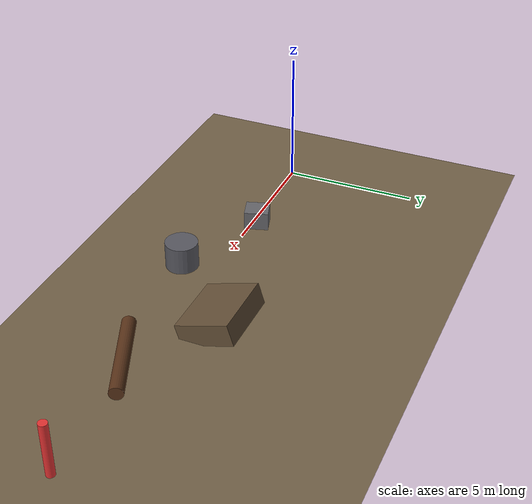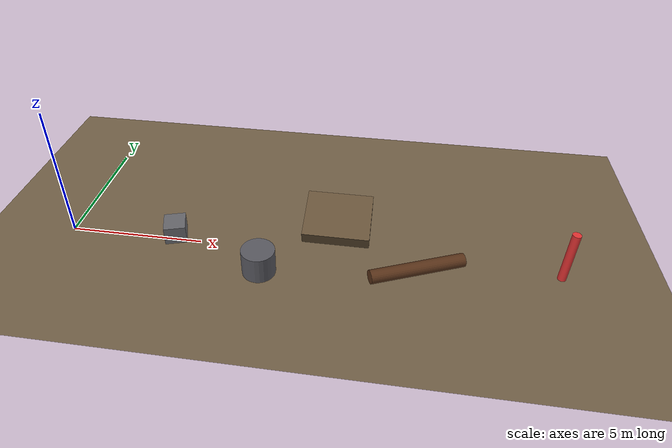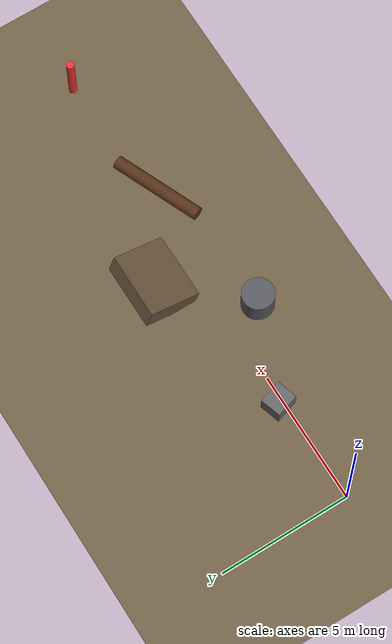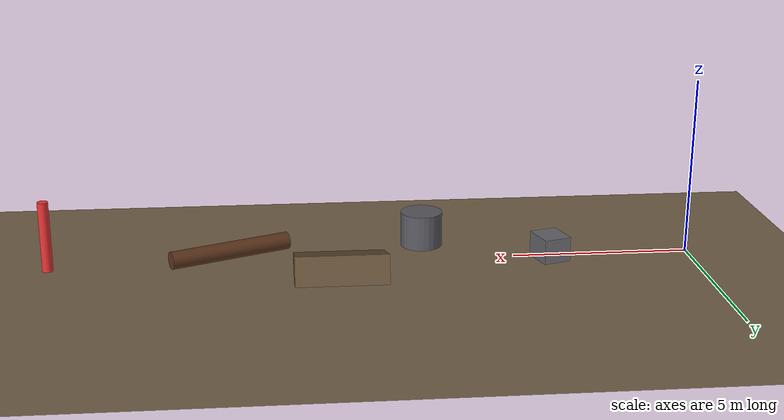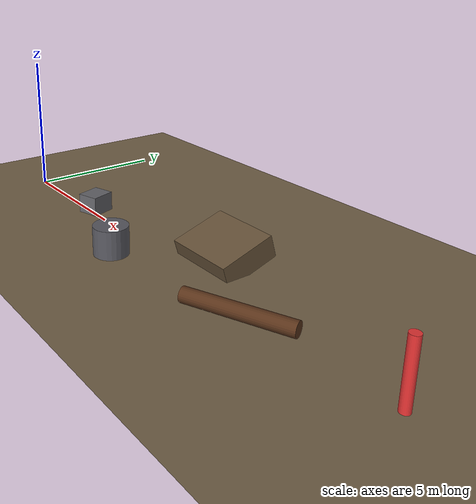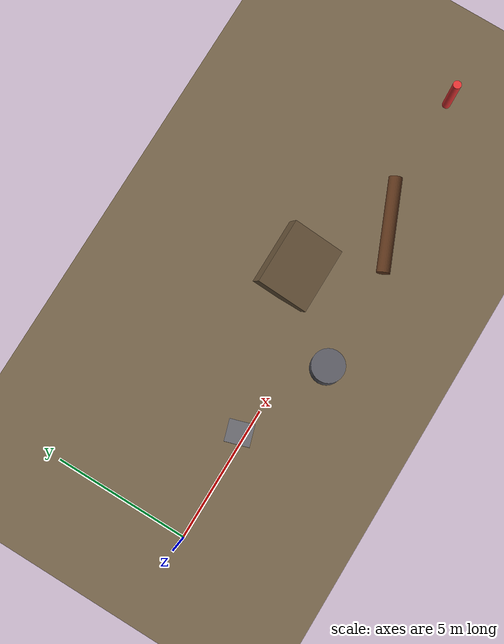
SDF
<?xml version="1.0" ?>
<sdf version="1.8">
  <world name="outdoor_unstructured">

    <physics name="1ms" type="ignored">
      <max_step_size>0.002</max_step_size>
      <real_time_factor>1.0</real_time_factor>
    </physics>

    <!-- Essential Gazebo Harmonic Systems -->
    <plugin filename="gz-sim-physics-system" name="gz::sim::systems::Physics"/>
    <plugin filename="gz-sim-user-commands-system" name="gz::sim::systems::UserCommands"/>
    <plugin filename="gz-sim-scene-broadcaster-system" name="gz::sim::systems::SceneBroadcaster"/>
    <plugin filename="gz-sim-sensors-system" name="gz::sim::systems::Sensors">
      <render_engine>ogre2</render_engine>
    </plugin>
    <plugin filename="gz-sim-imu-system" name="gz::sim::systems::Imu"/>

    <gravity>0 0 -9.8</gravity>

    <!-- Sun Light with Outdoor Shadows -->
    <light type="directional" name="sun">
      <cast_shadows>true</cast_shadows>
      <pose>0 0 50 0.5 0.5 0</pose>
      <diffuse>0.9 0.88 0.8 1</diffuse>
      <specular>0.3 0.3 0.3 1</specular>
      <direction>-0.5 0.3 -1.0</direction>
    </light>

    <!-- Outdoor Skybox & Ambient Scene -->
    <scene>
      <ambient>0.6 0.65 0.7 1</ambient>
      <background>0.5 0.7 0.9 1</background>
      <shadows>true</shadows>
      <grid>false</grid>
    </scene>

    <!-- Ground Plane (Dirt / Field Texture Simulation) -->
    <model name="ground_plane">
      <static>true</static>
      <link name="link">
        <collision name="collision">
          <geometry>
            <plane>
              <normal>0 0 1</normal>
              <size>100 100</size>
            </plane>
          </geometry>
          <surface>
            <friction>
              <ode>
                <mu>1.0</mu>
                <mu2>1.0</mu2>
              </ode>
            </friction>
          </surface>
        </collision>
        <visual name="visual">
          <geometry>
            <plane>
              <normal>0 0 1</normal>
              <size>100 100</size>
            </plane>
          </geometry>
          <material>
            <ambient>0.35 0.30 0.22 1.0</ambient>
            <diffuse>0.45 0.38 0.28 1.0</diffuse>
            <specular>0.05 0.05 0.05 1.0</specular>
          </material>
        </visual>
      </link>
    </model>

    <!-- Natural Hazard Obstacle: Boulder 1 (Ahead on the trail) -->
    <model name="boulder_1">
      <static>true</static>
      <pose>4.0 0.2 0.35 0 0 0.3</pose>
      <link name="link">
        <collision name="collision">
          <geometry>
            <box>
              <size>0.8 0.9 0.7</size>
            </box>
          </geometry>
        </collision>
        <visual name="visual">
          <geometry>
            <box>
              <size>0.8 0.9 0.7</size>
            </box>
          </geometry>
          <material>
            <ambient>0.3 0.3 0.3 1.0</ambient>
            <diffuse>0.4 0.4 0.42 1.0</diffuse>
          </material>
        </visual>
      </link>
    </model>

    <!-- Natural Hazard Obstacle: Boulder 2 (Offset right) -->
    <model name="boulder_2">
      <static>true</static>
      <pose>7.5 -1.2 0.5 0 0 0.8</pose>
      <link name="link">
        <collision name="collision">
          <geometry>
            <cylinder>
              <radius>0.6</radius>
              <length>1.0</length>
            </cylinder>
          </geometry>
        </collision>
        <visual name="visual">
          <geometry>
            <cylinder>
              <radius>0.6</radius>
              <length>1.0</length>
            </cylinder>
          </geometry>
          <material>
            <ambient>0.25 0.25 0.25 1.0</ambient>
            <diffuse>0.35 0.35 0.38 1.0</diffuse>
          </material>
        </visual>
      </link>
    </model>

    <!-- Natural Hazard Obstacle: Mound / Slope (Tests terrain elevation gradient) -->
    <model name="terrain_mound_1">
      <static>true</static>
      <pose>10.0 1.5 0.4 0.3 0 0</pose>
      <link name="link">
        <collision name="collision">
          <geometry>
            <box>
              <size>2.5 2.0 0.8</size>
            </box>
          </geometry>
        </collision>
        <visual name="visual">
          <geometry>
            <box>
              <size>2.5 2.0 0.8</size>
            </box>
          </geometry>
          <material>
            <ambient>0.3 0.25 0.18 1.0</ambient>
            <diffuse>0.4 0.32 0.22 1.0</diffuse>
          </material>
        </visual>
      </link>
    </model>

    <!-- Natural Hazard Obstacle: Fallen Tree / Log -->
    <model name="fallen_log">
      <static>true</static>
      <pose>13.0 -0.5 0.25 0 1.5707 0.4</pose>
      <link name="link">
        <collision name="collision">
          <geometry>
            <cylinder>
              <radius>0.25</radius>
              <length>3.5</length>
            </cylinder>
          </geometry>
        </collision>
        <visual name="visual">
          <geometry>
            <cylinder>
              <radius>0.25</radius>
              <length>3.5</length>
            </cylinder>
          </geometry>
          <material>
            <ambient>0.25 0.15 0.08 1.0</ambient>
            <diffuse>0.35 0.20 0.10 1.0</diffuse>
          </material>
        </visual>
      </link>
    </model>

    <!-- Destination Landmark: Beacon / Post -->
    <model name="target_landmark">
      <static>true</static>
      <pose>18.0 0.0 1.0 0 0 0</pose>
      <link name="link">
        <collision name="collision">
          <geometry>
            <cylinder>
              <radius>0.15</radius>
              <length>2.0</length>
            </cylinder>
          </geometry>
        </collision>
        <visual name="visual">
          <geometry>
            <cylinder>
              <radius>0.15</radius>
              <length>2.0</length>
            </cylinder>
          </geometry>
          <material>
            <ambient>0.8 0.1 0.1 1.0</ambient>
            <diffuse>0.9 0.2 0.2 1.0</diffuse>
          </material>
        </visual>
      </link>
    </model>

  </world>
</sdf>
